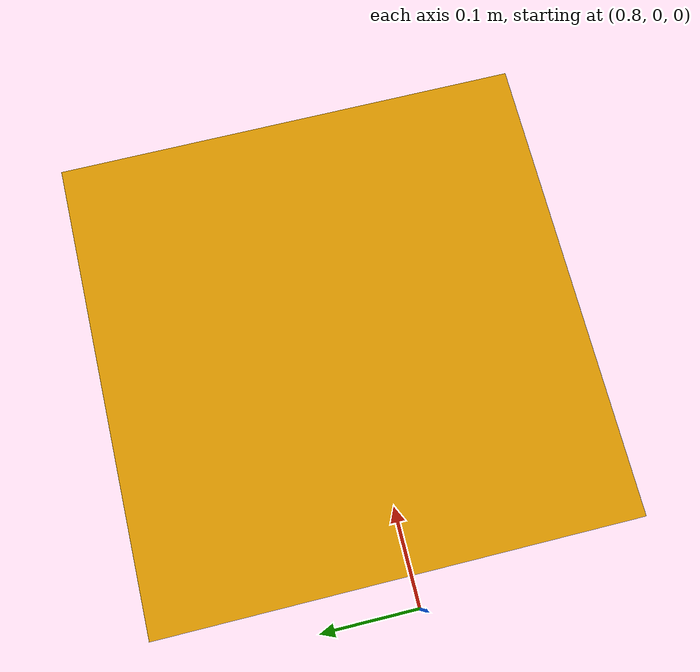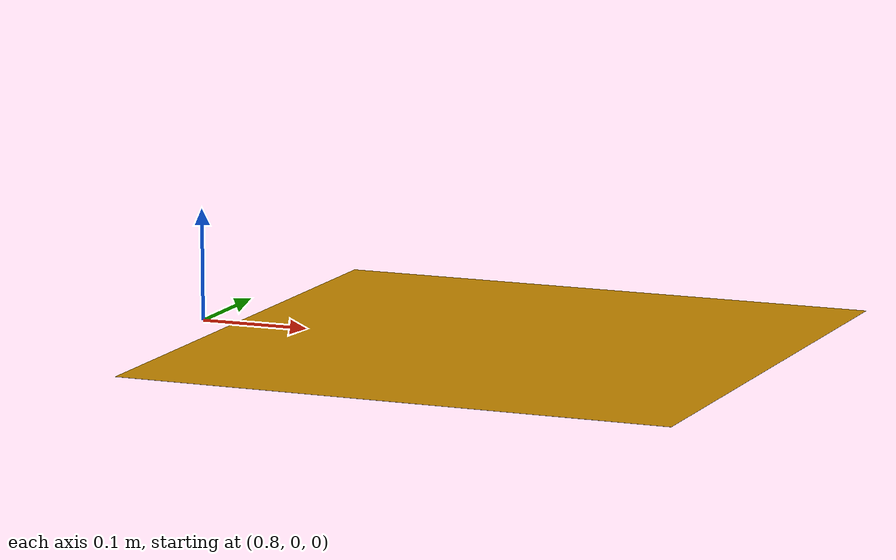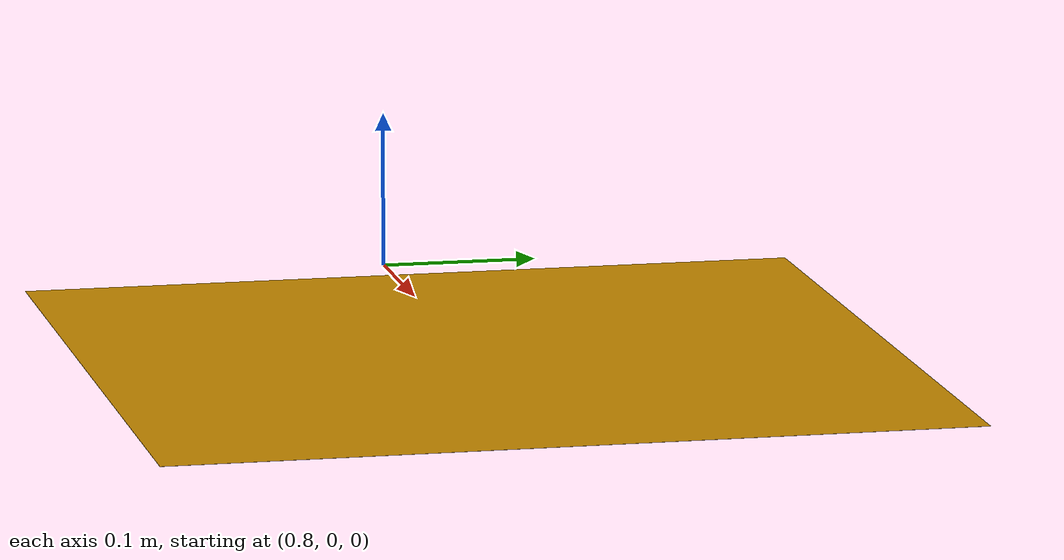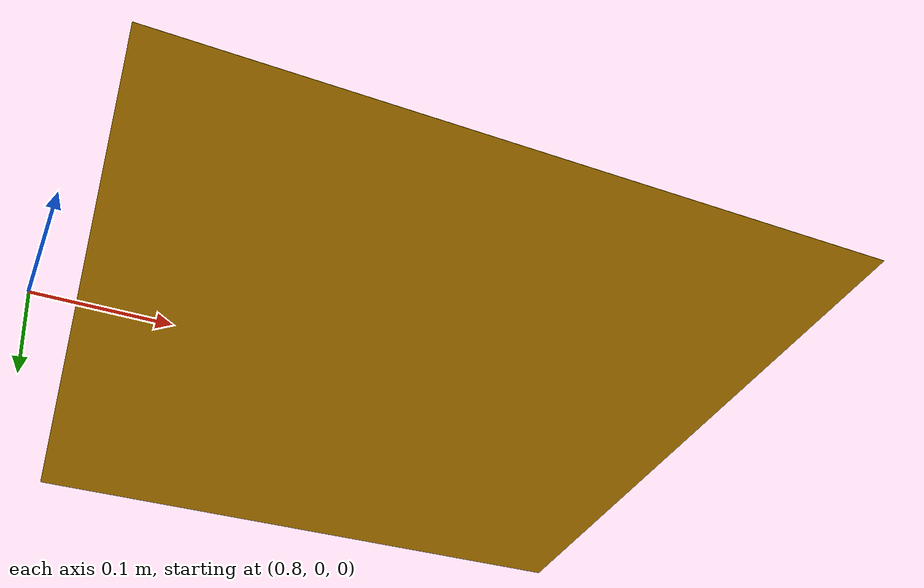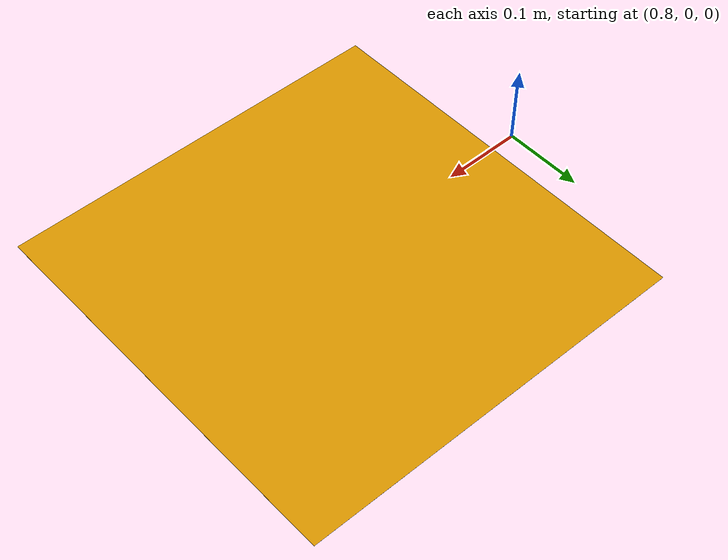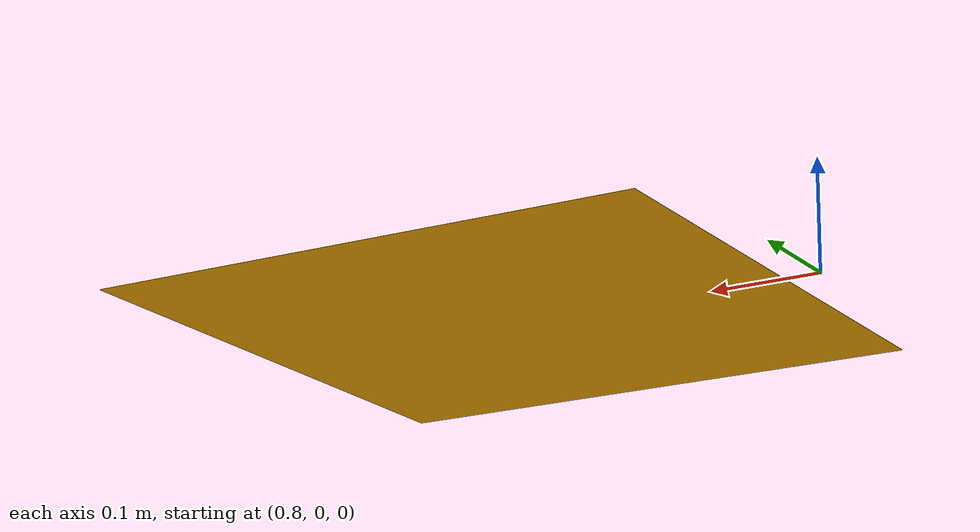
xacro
<?xml version="1.0"?>

<robot name="edufill_S3">

<xacro:macro name="edufill_S3" params="name">

	<link name="edufill_S3">
    		<inertial>
      			<origin xyz="1.082 0.01 0" />
      			<mass value="10.0" />
      			<inertia  ixx="1.0" ixy="0.0"  ixz="0.0"  iyy="1.0"  iyz="0.0"  izz="1.0" />
    		</inertial>
    		<visual>
      			<origin xyz="1.082 0.01 0"/>
      			<geometry>
        			<box size="0.5 0.5 0.0001" />
      			</geometry>
			<material name="surface">
				<texture filename="package://edufill_gazebo_world/common/worlds/S3.jpg"/>
			</material>
    		</visual>
    		<collision>
      			<origin xyz="1.082 0.01 0"/>
      		<geometry>
        		<box size="0.5 0.5 0.0001" />
      		</geometry>
    		</collision>
  	</link>

</xacro:macro>

<xacro:edufill_S3 name="edufill_S3" />
</robot>
